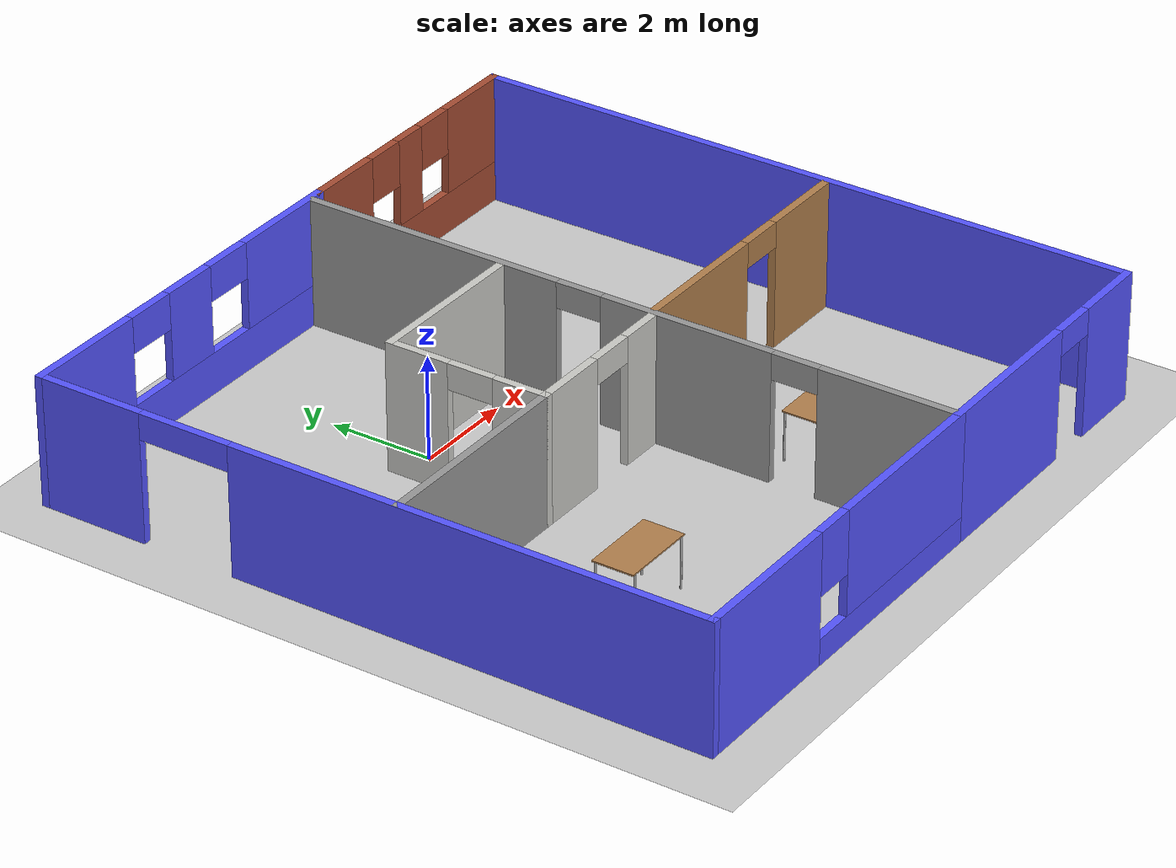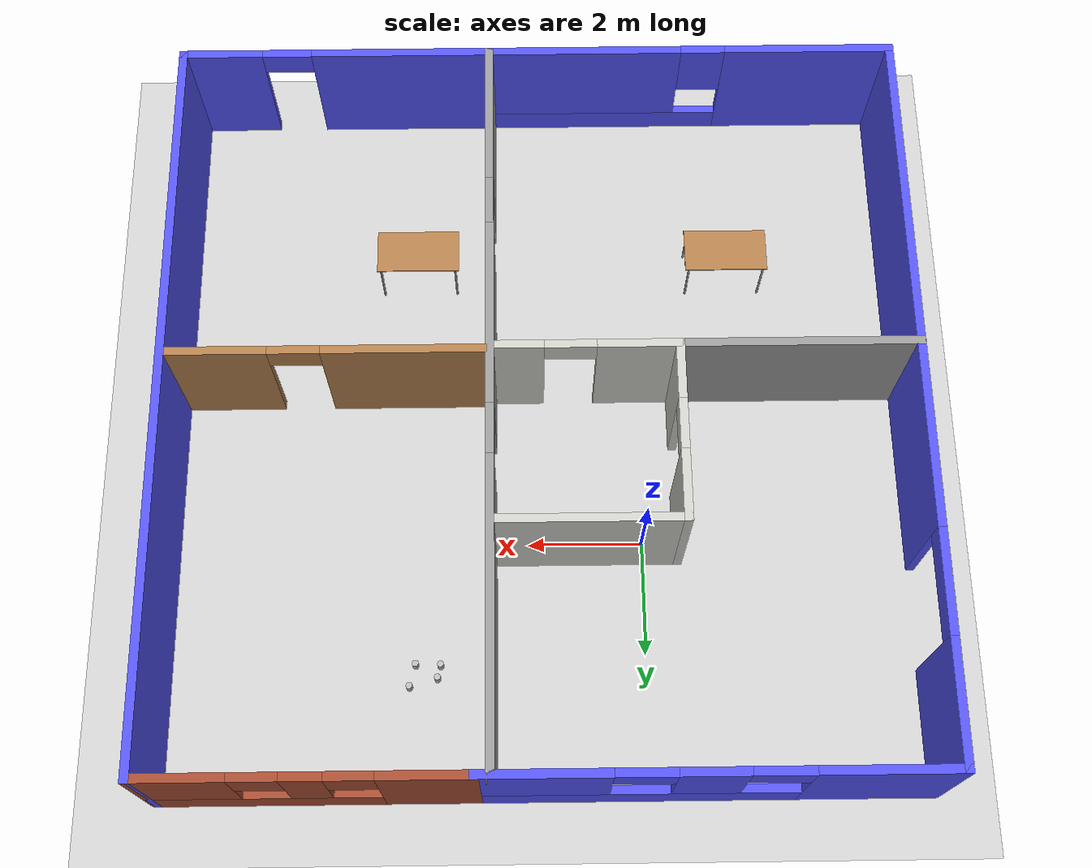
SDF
<sdf version="1.6">
 <world name="default">
  <plugin name="welcome" filename="libwelcome.so"/>
  <light name="sun" type="directional">
   <pose>0 0 10 0 -0 0</pose>
   <diffuse>0.8 0.8 0.8 1</diffuse>
   <specular>0.2 0.2 0.2 1</specular>
   <attenuation>
    <range>1000</range>
    <constant>0.9</constant>
    <linear>0.01</linear>
    <quadratic>0.001</quadratic>
   </attenuation>
   <direction>-0.5 0.1 -0.9</direction>
  </light>
  <model name="ground_plane">
   <static>1</static>
   <link name="link">
    <collision name="collision">
     <geometry><plane><normal>0 0 1</normal><size>100 100</size></plane></geometry>
     <surface><friction><ode><mu>100</mu><mu2>50</mu2></ode></friction></surface>
    </collision>
    <visual name="visual">
     <cast_shadows>0</cast_shadows>
     <geometry><plane><normal>0 0 1</normal><size>100 100</size></plane></geometry>
     <material>
      <script><uri>file://media/materials/scripts/gazebo.material</uri><name>Gazebo/Grey</name></script>
     </material>
    </visual>
   </link>
  </model>
  <gravity>0 0 -9.8</gravity>
  <magnetic_field>6e-06 2.3e-05 -4.2e-05</magnetic_field>
  <atmosphere type="adiabatic"/>
  <physics name="default_physics" default="0" type="ode">
   <max_step_size>0.001</max_step_size>
   <real_time_factor>1</real_time_factor>
   <real_time_update_rate>1000</real_time_update_rate>
  </physics>
  <scene><ambient>0.4 0.4 0.4 1</ambient><background>0.7 0.7 0.7 1</background><shadows>1</shadows></scene>
  <spherical_coordinates>
   <surface_model>EARTH_WGS84</surface_model>
   <latitude_deg>0</latitude_deg>
   <longitude_deg>0</longitude_deg>
   <elevation>0</elevation>
   <heading_deg>0</heading_deg>
  </spherical_coordinates>
  <model name="mybuilding">
   <pose>1.75603 -2.14734 0 0 -0 0</pose>
   <link name="Wall_27">
    <pose>-2.675 6.55 0 0 -0 0</pose>
    <visual name="Wall_27_Visual_0">
     <pose>-2.67943 0 1.25 0 -0 0</pose>
     <geometry><box><size>2.39114 0.15 2.5</size></box></geometry>
     <material>
      <script><uri>file://media/materials/scripts/gazebo.material</uri><name>Gazebo/Grey</name></script>
      <ambient>0.333333 0.333333 1 1</ambient>
     </material>
     <meta><layer>0</layer></meta>
    </visual>
    <collision name="Wall_27_Collision_0">
     <geometry><box><size>2.39114 0.15 2.5</size></box></geometry>
     <pose>-2.67943 0 1.25 0 -0 0</pose>
    </collision>
    <visual name="Wall_27_Visual_1">
     <pose>1.19557 0 0.4 0 -0 0</pose>
     <geometry><box><size>5.35886 0.15 0.8</size></box></geometry>
     <material>
      <script><uri>file://media/materials/scripts/gazebo.material</uri><name>Gazebo/Grey</name></script>
      <ambient>0.333333 0.333333 1 1</ambient>
     </material>
     <meta><layer>0</layer></meta>
    </visual>
    <collision name="Wall_27_Collision_1">
     <geometry><box><size>5.35886 0.15 0.8</size></box></geometry>
     <pose>1.19557 0 0.4 0 -0 0</pose>
    </collision>
    <visual name="Wall_27_Visual_2">
     <pose>0.080148 0 1.65 0 -0 0</pose>
     <geometry><box><size>1.12802 0.15 1.7</size></box></geometry>
     <material>
      <script><uri>file://media/materials/scripts/gazebo.material</uri><name>Gazebo/Grey</name></script>
      <ambient>0.333333 0.333333 1 1</ambient>
     </material>
     <meta><layer>0</layer></meta>
    </visual>
    <collision name="Wall_27_Collision_2">
     <geometry><box><size>1.12802 0.15 1.7</size></box></geometry>
     <pose>0.080148 0 1.65 0 -0 0</pose>
    </collision>
    <visual name="Wall_27_Visual_3">
     <pose>2.75958 0 1.65 0 -0 0</pose>
     <geometry><box><size>2.23084 0.15 1.7</size></box></geometry>
     <material>
      <script><uri>file://media/materials/scripts/gazebo.material</uri><name>Gazebo/Grey</name></script>
      <ambient>0.333333 0.333333 1 1</ambient>
     </material>
     <meta><layer>0</layer></meta>
    </visual>
    <collision name="Wall_27_Collision_3">
     <geometry><box><size>2.23084 0.15 1.7</size></box></geometry>
     <pose>2.75958 0 1.65 0 -0 0</pose>
    </collision>
    <visual name="Wall_27_Visual_4">
     <pose>-0.98386 0 2.15 0 -0 0</pose>
     <geometry><box><size>1 0.15 0.7</size></box></geometry>
     <material>
      <script><uri>file://media/materials/scripts/gazebo.material</uri><name>Gazebo/Grey</name></script>
      <ambient>0.333333 0.333333 1 1</ambient>
     </material>
     <meta><layer>0</layer></meta>
    </visual>
    <collision name="Wall_27_Collision_4">
     <geometry><box><size>1 0.15 0.7</size></box></geometry>
     <pose>-0.98386 0 2.15 0 -0 0</pose>
    </collision>
    <visual name="Wall_27_Visual_5">
     <pose>1.14416 0 2.15 0 -0 0</pose>
     <geometry><box><size>1 0.15 0.7</size></box></geometry>
     <material>
      <script><uri>file://media/materials/scripts/gazebo.material</uri><name>Gazebo/Grey</name></script>
      <ambient>0.333333 0.333333 1 1</ambient>
     </material>
     <meta><layer>0</layer></meta>
    </visual>
    <collision name="Wall_27_Collision_5">
     <geometry><box><size>1 0.15 0.7</size></box></geometry>
     <pose>1.14416 0 2.15 0 -0 0</pose>
    </collision>
   </link>
   <link name="Wall_28">
    <pose>3.8 6.55 0 0 -0 0</pose>
    <visual name="Wall_28_Visual_0">
     <pose>-1.95049 0 1.25 0 -0 0</pose>
     <geometry><box><size>1.59902 0.15 2.5</size></box></geometry>
     <material>
      <script><uri>file://media/materials/scripts/gazebo.material</uri><name>Gazebo/Bricks</name></script>
      <ambient>0.333333 0.333333 1 1</ambient>
     </material>
     <meta><layer>0</layer></meta>
    </visual>
    <collision name="Wall_28_Collision_0">
     <geometry><box><size>1.59902 0.15 2.5</size></box></geometry>
     <pose>-1.95049 0 1.25 0 -0 0</pose>
    </collision>
    <visual name="Wall_28_Visual_1">
     <pose>0.799508 0 0.4 0 -0 0</pose>
     <geometry><box><size>3.90098 0.15 0.8</size></box></geometry>
     <material>
      <script><uri>file://media/materials/scripts/gazebo.material</uri><name>Gazebo/Bricks</name></script>
      <ambient>0.333333 0.333333 1 1</ambient>
     </material>
     <meta><layer>0</layer></meta>
    </visual>
    <collision name="Wall_28_Collision_1">
     <geometry><box><size>3.90098 0.15 0.8</size></box></geometry>
     <pose>0.799508 0 0.4 0 -0 0</pose>
    </collision>
    <visual name="Wall_28_Visual_2">
     <pose>-0.009816 0 1.65 0 -0 0</pose>
     <geometry><box><size>0.682335 0.15 1.7</size></box></geometry>
     <material>
      <script><uri>file://media/materials/scripts/gazebo.material</uri><name>Gazebo/Bricks</name></script>
      <ambient>0.333333 0.333333 1 1</ambient>
     </material>
     <meta><layer>0</layer></meta>
    </visual>
    <collision name="Wall_28_Collision_2">
     <geometry><box><size>0.682335 0.15 1.7</size></box></geometry>
     <pose>-0.009816 0 1.65 0 -0 0</pose>
    </collision>
    <visual name="Wall_28_Visual_3">
     <pose>1.94068 0 1.65 0 -0 0</pose>
     <geometry><box><size>1.61865 0.15 1.7</size></box></geometry>
     <material>
      <script><uri>file://media/materials/scripts/gazebo.material</uri><name>Gazebo/Bricks</name></script>
      <ambient>0.333333 0.333333 1 1</ambient>
     </material>
     <meta><layer>0</layer></meta>
    </visual>
    <collision name="Wall_28_Collision_3">
     <geometry><box><size>1.61865 0.15 1.7</size></box></geometry>
     <pose>1.94068 0 1.65 0 -0 0</pose>
    </collision>
    <visual name="Wall_28_Visual_4">
     <pose>-0.750983 0 2.05 0 -0 0</pose>
     <geometry><box><size>0.8 0.15 0.9</size></box></geometry>
     <material>
      <script><uri>file://media/materials/scripts/gazebo.material</uri><name>Gazebo/Bricks</name></script>
      <ambient>0.333333 0.333333 1 1</ambient>
     </material>
     <meta><layer>0</layer></meta>
    </visual>
    <collision name="Wall_28_Collision_4">
     <geometry><box><size>0.8 0.15 0.9</size></box></geometry>
     <pose>-0.750983 0 2.05 0 -0 0</pose>
    </collision>
    <visual name="Wall_28_Visual_5">
     <pose>0.731352 0 2.05 0 -0 0</pose>
     <geometry><box><size>0.8 0.15 0.9</size></box></geometry>
     <material>
      <script><uri>file://media/materials/scripts/gazebo.material</uri><name>Gazebo/Bricks</name></script>
      <ambient>0.333333 0.333333 1 1</ambient>
     </material>
     <meta><layer>0</layer></meta>
    </visual>
    <collision name="Wall_28_Collision_5">
     <geometry><box><size>0.8 0.15 0.9</size></box></geometry>
     <pose>0.731352 0 2.05 0 -0 0</pose>
    </collision>
   </link>
   <link name="Wall_29">
    <collision name="Wall_29_Collision">
     <geometry><box><size>13.25 0.15 2.5</size></box></geometry>
     <pose>0 0 1.25 0 -0 0</pose>
    </collision>
    <visual name="Wall_29_Visual">
     <pose>0 0 1.25 0 -0 0</pose>
     <geometry><box><size>13.25 0.15 2.5</size></box></geometry>
     <material>
      <script><uri>file://media/materials/scripts/gazebo.material</uri><name>Gazebo/Grey</name></script>
      <ambient>0.333333 0.333333 1 1</ambient>
     </material>
     <meta><layer>0</layer></meta>
    </visual>
    <pose>6.475 0 0 0 0 -1.5708</pose>
   </link>
   <link name="Wall_30">
    <pose>3.675 -6.55 0 0 -0 3.14159</pose>
    <visual name="Wall_30_Visual_0">
     <pose>-2.11507 0 1.25 0 -0 0</pose>
     <geometry><box><size>1.51986 0.15 2.5</size></box></geometry>
     <material>
      <script><uri>file://media/materials/scripts/gazebo.material</uri><name>Gazebo/Grey</name></script>
      <ambient>0.333333 0.333333 1 1</ambient>
     </material>
     <meta><layer>0</layer></meta>
    </visual>
    <collision name="Wall_30_Collision_0">
     <geometry><box><size>1.51986 0.15 2.5</size></box></geometry>
     <pose>-2.11507 0 1.25 0 -0 0</pose>
    </collision>
    <visual name="Wall_30_Visual_1">
     <pose>1.20993 0 1.25 0 -0 0</pose>
     <geometry><box><size>3.33014 0.15 2.5</size></box></geometry>
     <material>
      <script><uri>file://media/materials/scripts/gazebo.material</uri><name>Gazebo/Grey</name></script>
      <ambient>0.333333 0.333333 1 1</ambient>
     </material>
     <meta><layer>0</layer></meta>
    </visual>
    <collision name="Wall_30_Collision_1">
     <geometry><box><size>3.33014 0.15 2.5</size></box></geometry>
     <pose>1.20993 0 1.25 0 -0 0</pose>
    </collision>
    <visual name="Wall_30_Visual_2">
     <pose>-0.905137 0 2.25 0 -0 0</pose>
     <geometry><box><size>0.9 0.15 0.5</size></box></geometry>
     <material>
      <script><uri>file://media/materials/scripts/gazebo.material</uri><name>Gazebo/Grey</name></script>
      <ambient>0.333333 0.333333 1 1</ambient>
     </material>
     <meta><layer>0</layer></meta>
    </visual>
    <collision name="Wall_30_Collision_2">
     <geometry><box><size>0.9 0.15 0.5</size></box></geometry>
     <pose>-0.905137 0 2.25 0 -0 0</pose>
    </collision>
   </link>
   <link name="Wall_31">
    <pose>0.875 0 0 0 -0 1.5708</pose>
    <visual name="Wall_31_Visual_0">
     <pose>-5.26343 0 1.25 0 -0 0</pose>
     <geometry><box><size>2.72314 0.15 2.5</size></box></geometry>
     <material>
      <script><uri>file://media/materials/scripts/gazebo.material</uri><name>Gazebo/Grey</name></script>
      <ambient>1 1 1 1</ambient>
     </material>
     <meta><layer>0</layer></meta>
    </visual>
    <collision name="Wall_31_Collision_0">
     <geometry><box><size>2.72314 0.15 2.5</size></box></geometry>
     <pose>-5.26343 0 1.25 0 -0 0</pose>
    </collision>
    <visual name="Wall_31_Visual_1">
     <pose>-1.30071 0 1.25 0 -0 0</pose>
     <geometry><box><size>3.40229 0.15 2.5</size></box></geometry>
     <material>
      <script><uri>file://media/materials/scripts/gazebo.material</uri><name>Gazebo/Grey</name></script>
      <ambient>1 1 1 1</ambient>
     </material>
     <meta><layer>0</layer></meta>
    </visual>
    <collision name="Wall_31_Collision_1">
     <geometry><box><size>3.40229 0.15 2.5</size></box></geometry>
     <pose>-1.30071 0 1.25 0 -0 0</pose>
    </collision>
    <visual name="Wall_31_Visual_2">
     <pose>3.96272 0 1.25 0 -0 0</pose>
     <geometry><box><size>5.32456 0.15 2.5</size></box></geometry>
     <material>
      <script><uri>file://media/materials/scripts/gazebo.material</uri><name>Gazebo/Grey</name></script>
      <ambient>1 1 1 1</ambient>
     </material>
     <meta><layer>0</layer></meta>
    </visual>
    <collision name="Wall_31_Collision_2">
     <geometry><box><size>5.32456 0.15 2.5</size></box></geometry>
     <pose>3.96272 0 1.25 0 -0 0</pose>
    </collision>
    <visual name="Wall_31_Visual_3">
     <pose>-3.45186 0 2.25 0 -0 0</pose>
     <geometry><box><size>0.9 0.15 0.5</size></box></geometry>
     <material>
      <script><uri>file://media/materials/scripts/gazebo.material</uri><name>Gazebo/Grey</name></script>
      <ambient>1 1 1 1</ambient>
     </material>
     <meta><layer>0</layer></meta>
    </visual>
    <collision name="Wall_31_Collision_3">
     <geometry><box><size>0.9 0.15 0.5</size></box></geometry>
     <pose>-3.45186 0 2.25 0 -0 0</pose>
    </collision>
    <visual name="Wall_31_Visual_4">
     <pose>0.850436 0 2.25 0 -0 0</pose>
     <geometry><box><size>0.9 0.15 0.5</size></box></geometry>
     <material>
      <script><uri>file://media/materials/scripts/gazebo.material</uri><name>Gazebo/Grey</name></script>
      <ambient>1 1 1 1</ambient>
     </material>
     <meta><layer>0</layer></meta>
    </visual>
    <collision name="Wall_31_Collision_4">
     <geometry><box><size>0.9 0.15 0.5</size></box></geometry>
     <pose>0.850436 0 2.25 0 -0 0</pose>
    </collision>
   </link>
   <link name="Wall_33">
    <pose>-6.475 0 0 0 0 -1.5708</pose>
    <visual name="Wall_33_Visual_0">
     <pose>-5.54642 0 1.25 0 -0 0</pose>
     <geometry><box><size>2.15715 0.15 2.5</size></box></geometry>
     <material>
      <script><uri>file://media/materials/scripts/gazebo.material</uri><name>Gazebo/Grey</name></script>
      <ambient>0.333333 0.333333 1 1</ambient>
     </material>
     <meta><layer>0</layer></meta>
    </visual>
    <collision name="Wall_33_Collision_0">
     <geometry><box><size>2.15715 0.15 2.5</size></box></geometry>
     <pose>-5.54642 0 1.25 0 -0 0</pose>
    </collision>
    <visual name="Wall_33_Visual_1">
     <pose>1.97858 0 1.25 0 -0 0</pose>
     <geometry><box><size>9.29285 0.15 2.5</size></box></geometry>
     <material>
      <script><uri>file://media/materials/scripts/gazebo.material</uri><name>Gazebo/Grey</name></script>
      <ambient>0.333333 0.333333 1 1</ambient>
     </material>
     <meta><layer>0</layer></meta>
    </visual>
    <collision name="Wall_33_Collision_1">
     <geometry><box><size>9.29285 0.15 2.5</size></box></geometry>
     <pose>1.97858 0 1.25 0 -0 0</pose>
    </collision>
    <visual name="Wall_33_Visual_2">
     <pose>-3.56785 0 2.25 0 -0 0</pose>
     <geometry><box><size>1.8 0.15 0.5</size></box></geometry>
     <material>
      <script><uri>file://media/materials/scripts/gazebo.material</uri><name>Gazebo/Grey</name></script>
      <ambient>0.333333 0.333333 1 1</ambient>
     </material>
     <meta><layer>0</layer></meta>
    </visual>
    <collision name="Wall_33_Collision_2">
     <geometry><box><size>1.8 0.15 0.5</size></box></geometry>
     <pose>-3.56785 0 2.25 0 -0 0</pose>
    </collision>
   </link>
   <link name="Wall_34">
    <pose>-2.8 -6.55 0 0 -0 0</pose>
    <visual name="Wall_34_Visual_0">
     <pose>-2.19831 0 1.25 0 -0 0</pose>
     <geometry><box><size>3.10339 0.15 2.5</size></box></geometry>
     <material>
      <script><uri>file://media/materials/scripts/gazebo.material</uri><name>Gazebo/Grey</name></script>
      <ambient>0.333333 0.333333 1 1</ambient>
     </material>
     <meta><layer>0</layer></meta>
    </visual>
    <collision name="Wall_34_Collision_0">
     <geometry><box><size>3.10339 0.15 2.5</size></box></geometry>
     <pose>-2.19831 0 1.25 0 -0 0</pose>
    </collision>
    <visual name="Wall_34_Visual_1">
     <pose>1.55169 0 0.25 0 -0 0</pose>
     <geometry><box><size>4.39661 0.15 0.5</size></box></geometry>
     <material>
      <script><uri>file://media/materials/scripts/gazebo.material</uri><name>Gazebo/Grey</name></script>
      <ambient>0.333333 0.333333 1 1</ambient>
     </material>
     <meta><layer>0</layer></meta>
    </visual>
    <collision name="Wall_34_Collision_1">
     <geometry><box><size>4.39661 0.15 0.5</size></box></geometry>
     <pose>1.55169 0 0.25 0 -0 0</pose>
    </collision>
    <visual name="Wall_34_Visual_2">
     <pose>1.95169 0 1.5 0 -0 0</pose>
     <geometry><box><size>3.59661 0.15 2</size></box></geometry>
     <material>
      <script><uri>file://media/materials/scripts/gazebo.material</uri><name>Gazebo/Grey</name></script>
      <ambient>0.333333 0.333333 1 1</ambient>
     </material>
     <meta><layer>0</layer></meta>
    </visual>
    <collision name="Wall_34_Collision_2">
     <geometry><box><size>3.59661 0.15 2</size></box></geometry>
     <pose>1.95169 0 1.5 0 -0 0</pose>
    </collision>
    <visual name="Wall_34_Visual_3">
     <pose>-0.246611 0 1.9 0 -0 0</pose>
     <geometry><box><size>0.8 0.15 1.2</size></box></geometry>
     <material>
      <script><uri>file://media/materials/scripts/gazebo.material</uri><name>Gazebo/Grey</name></script>
      <ambient>0.333333 0.333333 1 1</ambient>
     </material>
     <meta><layer>0</layer></meta>
    </visual>
    <collision name="Wall_34_Collision_3">
     <geometry><box><size>0.8 0.15 1.2</size></box></geometry>
     <pose>-0.246611 0 1.9 0 -0 0</pose>
    </collision>
   </link>
   <link name="Wall_36">
    <collision name="Wall_36_Collision">
     <geometry><box><size>4.25 0.15 2.5</size></box></geometry>
     <pose>0 0 1.25 0 -0 0</pose>
    </collision>
    <visual name="Wall_36_Visual">
     <pose>0 0 1.25 0 -0 0</pose>
     <geometry><box><size>4.25 0.15 2.5</size></box></geometry>
     <material>
      <script><uri>file://media/materials/scripts/gazebo.material</uri><name>Gazebo/Grey</name></script>
      <ambient>1 1 1 1</ambient>
     </material>
     <meta><layer>0</layer></meta>
    </visual>
    <pose>-4.42158 -0.659245 0 0 -0 0</pose>
   </link>
   <link name="Wall_37">
    <pose>-0.821578 -0.659245 0 0 -0 0</pose>
    <visual name="Wall_37_Visual_0">
     <pose>-0.881009 0 1.25 0 -0 0</pose>
     <geometry><box><size>1.48798 0.15 2.5</size></box></geometry>
     <material>
      <script><uri>file://media/materials/scripts/gazebo.material</uri><name>Gazebo/CeilingTiled</name></script>
      <ambient>1 1 1 1</ambient>
     </material>
     <meta><layer>0</layer></meta>
    </visual>
    <collision name="Wall_37_Collision_0">
     <geometry><box><size>1.48798 0.15 2.5</size></box></geometry>
     <pose>-0.881009 0 1.25 0 -0 0</pose>
    </collision>
    <visual name="Wall_37_Visual_1">
     <pose>1.19399 0 1.25 0 -0 0</pose>
     <geometry><box><size>0.862019 0.15 2.5</size></box></geometry>
     <material>
      <script><uri>file://media/materials/scripts/gazebo.material</uri><name>Gazebo/CeilingTiled</name></script>
      <ambient>1 1 1 1</ambient>
     </material>
     <meta><layer>0</layer></meta>
    </visual>
    <collision name="Wall_37_Collision_1">
     <geometry><box><size>0.862019 0.15 2.5</size></box></geometry>
     <pose>1.19399 0 1.25 0 -0 0</pose>
    </collision>
    <visual name="Wall_37_Visual_2">
     <pose>0.312981 0 2.25 0 -0 0</pose>
     <geometry><box><size>0.9 0.15 0.5</size></box></geometry>
     <material>
      <script><uri>file://media/materials/scripts/gazebo.material</uri><name>Gazebo/CeilingTiled</name></script>
      <ambient>1 1 1 1</ambient>
     </material>
     <meta><layer>0</layer></meta>
    </visual>
    <collision name="Wall_37_Collision_2">
     <geometry><box><size>0.9 0.15 0.5</size></box></geometry>
     <pose>0.312981 0 2.25 0 -0 0</pose>
    </collision>
   </link>
   <link name="Wall_44">
    <pose>-2.37158 0.890755 0 0 -0 1.5708</pose>
    <visual name="Wall_44_Visual_0">
     <pose>-1.08079 0 1.25 0 -0 0</pose>
     <geometry><box><size>1.08842 0.15 2.5</size></box></geometry>
     <material>
      <script><uri>file://media/materials/scripts/gazebo.material</uri><name>Gazebo/CeilingTiled</name></script>
      <ambient>1 1 1 1</ambient>
     </material>
     <meta><layer>0</layer></meta>
    </visual>
    <collision name="Wall_44_Collision_0">
     <geometry><box><size>1.08842 0.15 2.5</size></box></geometry>
     <pose>-1.08079 0 1.25 0 -0 0</pose>
    </collision>
    <visual name="Wall_44_Visual_1">
     <pose>0.994209 0 1.25 0 -0 0</pose>
     <geometry><box><size>1.26158 0.15 2.5</size></box></geometry>
     <material>
      <script><uri>file://media/materials/scripts/gazebo.material</uri><name>Gazebo/CeilingTiled</name></script>
      <ambient>1 1 1 1</ambient>
     </material>
     <meta><layer>0</layer></meta>
    </visual>
    <collision name="Wall_44_Collision_1">
     <geometry><box><size>1.26158 0.15 2.5</size></box></geometry>
     <pose>0.994209 0 1.25 0 -0 0</pose>
    </collision>
    <visual name="Wall_44_Visual_2">
     <pose>-0.086581 0 2.25 0 -0 0</pose>
     <geometry><box><size>0.9 0.15 0.5</size></box></geometry>
     <material>
      <script><uri>file://media/materials/scripts/gazebo.material</uri><name>Gazebo/CeilingTiled</name></script>
      <ambient>1 1 1 1</ambient>
     </material>
     <meta><layer>0</layer></meta>
    </visual>
    <collision name="Wall_44_Collision_2">
     <geometry><box><size>0.9 0.15 0.5</size></box></geometry>
     <pose>-0.086581 0 2.25 0 -0 0</pose>
    </collision>
   </link>
   <link name="Wall_46">
    <collision name="Wall_46_Collision">
     <geometry><box><size>3.25 0.15 2.5</size></box></geometry>
     <pose>0 0 1.25 0 -0 0</pose>
    </collision>
    <visual name="Wall_46_Visual">
     <pose>0 0 1.25 0 -0 0</pose>
     <geometry><box><size>3.25 0.15 2.5</size></box></geometry>
     <material>
      <script><uri>file://media/materials/scripts/gazebo.material</uri><name>Gazebo/CeilingTiled</name></script>
      <ambient>1 1 1 1</ambient>
     </material>
     <meta><layer>0</layer></meta>
    </visual>
    <pose>-0.821578 2.44075 0 0 -0 0</pose>
   </link>
   <link name="Wall_49">
    <pose>3.6723 -0.596741 0 0 -0 3.14159</pose>
    <visual name="Wall_49_Visual_0">
     <pose>-1.86887 0 1.25 0 -0 0</pose>
     <geometry><box><size>1.76226 0.15 2.5</size></box></geometry>
     <material>
      <script><uri>file://media/materials/scripts/gazebo.material</uri><name>Gazebo/Wood</name></script>
      <ambient>1 1 1 1</ambient>
     </material>
     <meta><layer>0</layer></meta>
    </visual>
    <collision name="Wall_49_Collision_0">
     <geometry><box><size>1.76226 0.15 2.5</size></box></geometry>
     <pose>-1.86887 0 1.25 0 -0 0</pose>
    </collision>
    <visual name="Wall_49_Visual_1">
     <pose>1.33113 0 1.25 0 -0 0</pose>
     <geometry><box><size>2.83774 0.15 2.5</size></box></geometry>
     <material>
      <script><uri>file://media/materials/scripts/gazebo.material</uri><name>Gazebo/Wood</name></script>
      <ambient>1 1 1 1</ambient>
     </material>
     <meta><layer>0</layer></meta>
    </visual>
    <collision name="Wall_49_Collision_1">
     <geometry><box><size>2.83774 0.15 2.5</size></box></geometry>
     <pose>1.33113 0 1.25 0 -0 0</pose>
    </collision>
    <visual name="Wall_49_Visual_2">
     <pose>-0.537743 0 2.25 0 -0 0</pose>
     <geometry><box><size>0.9 0.15 0.5</size></box></geometry>
     <material>
      <script><uri>file://media/materials/scripts/gazebo.material</uri><name>Gazebo/Wood</name></script>
      <ambient>1 1 1 1</ambient>
     </material>
     <meta><layer>0</layer></meta>
    </visual>
    <collision name="Wall_49_Collision_2">
     <geometry><box><size>0.9 0.15 0.5</size></box></geometry>
     <pose>-0.537743 0 2.25 0 -0 0</pose>
    </collision>
   </link>
   <static>1</static>
  </model>
  <model name="beer">
   <link name="link">
    <pose>0 0 0.115 0 -0 0</pose>
    <inertial>
     <mass>0.39</mass>
     <inertia><ixx>0.00058</ixx><ixy>0</ixy><ixz>0</ixz><iyy>0.00058</iyy><iyz>0</iyz><izz>0.00019</izz></inertia>
    </inertial>
    <collision name="collision">
     <geometry><cylinder><radius>0.055</radius><length>0.23</length></cylinder></geometry>
    </collision>
    <visual name="visual">
     <geometry><cylinder><radius>0.055</radius><length>0.23</length></cylinder></geometry>
     <material>
      <script>
       <uri>model://beer/materials/scripts</uri>
       <uri>model://beer/materials/textures</uri>
       <name>Beer/Diffuse</name>
      </script>
     </material>
    </visual>
   </link>
   <pose>3.48943 2.33522 0.775005 2.4e-05 9.3e-05 -0.000587</pose>
  </model>
  <model name="beer_0">
   <link name="link">
    <pose>0 0 0.115 0 -0 0</pose>
    <inertial>
     <mass>0.39</mass>
     <inertia><ixx>0.00058</ixx><ixy>0</ixy><ixz>0</ixz><iyy>0.00058</iyy><iyz>0</iyz><izz>0.00019</izz></inertia>
    </inertial>
    <collision name="collision">
     <geometry><cylinder><radius>0.055</radius><length>0.23</length></cylinder></geometry>
    </collision>
    <visual name="visual">
     <geometry><cylinder><radius>0.055</radius><length>0.23</length></cylinder></geometry>
     <material>
      <script>
       <uri>model://beer/materials/scripts</uri>
       <uri>model://beer/materials/textures</uri>
       <name>Beer/Diffuse</name>
      </script>
     </material>
    </visual>
   </link>
   <pose>3.54014 2.55329 0.775001 1e-06 -2.7e-05 0.003496</pose>
  </model>
  <model name="beer_1">
   <link name="link">
    <pose>0 0 0.115 0 -0 0</pose>
    <inertial>
     <mass>0.39</mass>
     <inertia><ixx>0.00058</ixx><ixy>0</ixy><ixz>0</ixz><iyy>0.00058</iyy><iyz>0</iyz><izz>0.00019</izz></inertia>
    </inertial>
    <collision name="collision">
     <geometry><cylinder><radius>0.055</radius><length>0.23</length></cylinder></geometry>
    </collision>
    <visual name="visual">
     <geometry><cylinder><radius>0.055</radius><length>0.23</length></cylinder></geometry>
     <material>
      <script>
       <uri>model://beer/materials/scripts</uri>
       <uri>model://beer/materials/textures</uri>
       <name>Beer/Diffuse</name>
      </script>
     </material>
    </visual>
   </link>
   <pose>4.00775 2.69372 0.775002 -7e-06 2.7e-05 -0.003379</pose>
  </model>
  <model name="beer_2">
   <link name="link">
    <pose>0 0 0.115 0 -0 0</pose>
    <inertial>
     <mass>0.39</mass>
     <inertia><ixx>0.00058</ixx><ixy>0</ixy><ixz>0</ixz><iyy>0.00058</iyy><iyz>0</iyz><izz>0.00019</izz></inertia>
    </inertial>
    <collision name="collision">
     <geometry><cylinder><radius>0.055</radius><length>0.23</length></cylinder></geometry>
    </collision>
    <visual name="visual">
     <geometry><cylinder><radius>0.055</radius><length>0.23</length></cylinder></geometry>
     <material>
      <script>
       <uri>model://beer/materials/scripts</uri>
       <uri>model://beer/materials/textures</uri>
       <name>Beer/Diffuse</name>
      </script>
     </material>
    </visual>
   </link>
   <pose>3.91097 2.32183 0.774996 2.8e-05 0.000105 0.002825</pose>
  </model>
  <model name="table">
   <static>1</static>
   <link name="link">
    <collision name="surface">
     <pose>0 0 1 0 -0 0</pose>
     <geometry><box><size>1.5 0.8 0.03</size></box></geometry>
     <surface><friction><ode><mu>0.6</mu><mu2>0.6</mu2></ode></friction></surface>
    </collision>
    <visual name="visual1">
     <pose>0 0 1 0 -0 0</pose>
     <geometry><box><size>1.5 0.8 0.03</size></box></geometry>
     <material>
      <script><uri>file://media/materials/scripts/gazebo.material</uri><name>Gazebo/Wood</name></script>
     </material>
    </visual>
    <collision name="front_left_leg">
     <pose>0.68 0.38 0.5 0 -0 0</pose>
     <geometry><cylinder><radius>0.02</radius><length>1</length></cylinder></geometry>
    </collision>
    <visual name="front_left_leg">
     <pose>0.68 0.38 0.5 0 -0 0</pose>
     <geometry><cylinder><radius>0.02</radius><length>1</length></cylinder></geometry>
     <material>
      <script><uri>file://media/materials/scripts/gazebo.material</uri><name>Gazebo/Grey</name></script>
     </material>
    </visual>
    <collision name="front_right_leg">
     <pose>0.68 -0.38 0.5 0 -0 0</pose>
     <geometry><cylinder><radius>0.02</radius><length>1</length></cylinder></geometry>
    </collision>
    <visual name="front_right_leg">
     <pose>0.68 -0.38 0.5 0 -0 0</pose>
     <geometry><cylinder><radius>0.02</radius><length>1</length></cylinder></geometry>
     <material>
      <script><uri>file://media/materials/scripts/gazebo.material</uri><name>Gazebo/Grey</name></script>
     </material>
    </visual>
    <collision name="back_right_leg">
     <pose>-0.68 -0.38 0.5 0 -0 0</pose>
     <geometry><cylinder><radius>0.02</radius><length>1</length></cylinder></geometry>
    </collision>
    <visual name="back_right_leg">
     <pose>-0.68 -0.38 0.5 0 -0 0</pose>
     <geometry><cylinder><radius>0.02</radius><length>1</length></cylinder></geometry>
     <material>
      <script><uri>file://media/materials/scripts/gazebo.material</uri><name>Gazebo/Grey</name></script>
     </material>
    </visual>
    <collision name="back_left_leg">
     <pose>-0.68 0.38 0.5 0 -0 0</pose>
     <geometry><cylinder><radius>0.02</radius><length>1</length></cylinder></geometry>
    </collision>
    <visual name="back_left_leg">
     <pose>-0.68 0.38 0.5 0 -0 0</pose>
     <geometry><cylinder><radius>0.02</radius><length>1</length></cylinder></geometry>
     <material>
      <script><uri>file://media/materials/scripts/gazebo.material</uri><name>Gazebo/Grey</name></script>
     </material>
    </visual>
   </link>
   <pose>3.97259 -5.36923 0 0 -0 0</pose>
  </model>
  <model name="table_0">
   <static>1</static>
   <link name="link">
    <collision name="surface">
     <pose>0 0 1 0 -0 0</pose>
     <geometry><box><size>1.5 0.8 0.03</size></box></geometry>
     <surface><friction><ode><mu>0.6</mu><mu2>0.6</mu2></ode></friction></surface>
    </collision>
    <visual name="visual1">
     <pose>0 0 1 0 -0 0</pose>
     <geometry><box><size>1.5 0.8 0.03</size></box></geometry>
     <material>
      <script><uri>file://media/materials/scripts/gazebo.material</uri><name>Gazebo/Wood</name></script>
     </material>
    </visual>
    <collision name="front_left_leg">
     <pose>0.68 0.38 0.5 0 -0 0</pose>
     <geometry><cylinder><radius>0.02</radius><length>1</length></cylinder></geometry>
    </collision>
    <visual name="front_left_leg">
     <pose>0.68 0.38 0.5 0 -0 0</pose>
     <geometry><cylinder><radius>0.02</radius><length>1</length></cylinder></geometry>
     <material>
      <script><uri>file://media/materials/scripts/gazebo.material</uri><name>Gazebo/Grey</name></script>
     </material>
    </visual>
    <collision name="front_right_leg">
     <pose>0.68 -0.38 0.5 0 -0 0</pose>
     <geometry><cylinder><radius>0.02</radius><length>1</length></cylinder></geometry>
    </collision>
    <visual name="front_right_leg">
     <pose>0.68 -0.38 0.5 0 -0 0</pose>
     <geometry><cylinder><radius>0.02</radius><length>1</length></cylinder></geometry>
     <material>
      <script><uri>file://media/materials/scripts/gazebo.material</uri><name>Gazebo/Grey</name></script>
     </material>
    </visual>
    <collision name="back_right_leg">
     <pose>-0.68 -0.38 0.5 0 -0 0</pose>
     <geometry><cylinder><radius>0.02</radius><length>1</length></cylinder></geometry>
    </collision>
    <visual name="back_right_leg">
     <pose>-0.68 -0.38 0.5 0 -0 0</pose>
     <geometry><cylinder><radius>0.02</radius><length>1</length></cylinder></geometry>
     <material>
      <script><uri>file://media/materials/scripts/gazebo.material</uri><name>Gazebo/Grey</name></script>
     </material>
    </visual>
    <collision name="back_left_leg">
     <pose>-0.68 0.38 0.5 0 -0 0</pose>
     <geometry><cylinder><radius>0.02</radius><length>1</length></cylinder></geometry>
    </collision>
    <visual name="back_left_leg">
     <pose>-0.68 0.38 0.5 0 -0 0</pose>
     <geometry><cylinder><radius>0.02</radius><length>1</length></cylinder></geometry>
     <material>
      <script><uri>file://media/materials/scripts/gazebo.material</uri><name>Gazebo/Grey</name></script>
     </material>
    </visual>
   </link>
   <pose>-1.67989 -5.332 0 0 -0 0</pose>
  </model>
  <model name="my_ball">
   <link name="link_0">
    <inertial>
     <mass>1</mass>
     <inertia><ixx>0.1</ixx><ixy>0</ixy><ixz>0</ixz><iyy>0.1</iyy><iyz>0</iyz><izz>0.1</izz></inertia>
    </inertial>
    <visual name="visual">
     <geometry><sphere><radius>0.1</radius></sphere></geometry>
     <material>
      <lighting>1</lighting>
      <script><uri>file://media/materials/scripts/gazebo.material</uri><name>Gazebo/White</name></script>
      <shader type="pixel"><normal_map>__default__</normal_map></shader>
      <ambient>1 1 1 1</ambient>
      <diffuse>1 1 1 1</diffuse>
      <specular>1 1 1 1</specular>
      <emissive>1 1 1 1</emissive>
     </material>
    </visual>
    <collision name="collision">
     <geometry><sphere><radius>0.1</radius></sphere></geometry>
     <surface>
      <friction>
       <ode><mu>1</mu><mu2>1</mu2><fdir1>0 0 0</fdir1><slip1>0</slip1><slip2>0</slip2></ode>
       <torsional>
        <coefficient>1</coefficient>
        <patch_radius>0</patch_radius>
        <surface_radius>0</surface_radius>
        <use_patch_radius>1</use_patch_radius>
        <ode><slip>0</slip></ode>
       </torsional>
      </friction>
      <bounce><restitution_coefficient>0</restitution_coefficient><threshold>1e+06</threshold></bounce>
      <contact>
       <collide_without_contact>0</collide_without_contact>
       <collide_without_contact_bitmask>1</collide_without_contact_bitmask>
       <collide_bitmask>1</collide_bitmask>
       <ode>
        <soft_cfm>0</soft_cfm>
        <soft_erp>0.2</soft_erp>
        <kp>1e+13</kp>
        <kd>1</kd>
        <max_vel>0.01</max_vel>
        <min_depth>0</min_depth>
       </ode>
       <bullet>
        <split_impulse>1</split_impulse>
        <split_impulse_penetration_threshold>-0.01</split_impulse_penetration_threshold>
        <soft_cfm>0</soft_cfm>
        <soft_erp>0.2</soft_erp>
        <kp>1e+13</kp>
        <kd>1</kd>
       </bullet>
      </contact>
     </surface>
    </collision>
   </link>
   <static>0</static>
   <pose>8.55566 0.070208 0.1 0 -0 0</pose>
  </model>
 </world>
</sdf>
